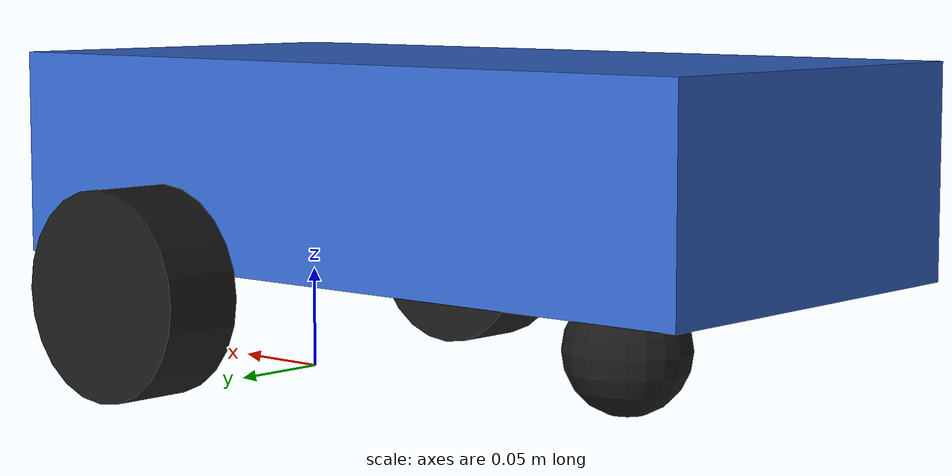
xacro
<?xml version="1.0"?>
<robot name="my_robot" xmlns:xacro="http://www.ros.org/wiki/xacro">

<material name="blue">
    <color rgba="0.2 0.4 0.8 1.0"/>
</material>

<material name="dark">
    <color rgba="0.1 0.1 0.1 1.0"/>
</material>

<xacro:property name="wheel_radius" value="0.05"/>
<xacro:property name="wheel_length" value="0.04"/>
<xacro:property name="wheel_mass" value="0.2"/>
<xacro:property name="base_mass" value="2.0"/>
<xacro:property name="base_length" value="0.4"/>
<xacro:property name="base_width" value="0.2"/>
<xacro:property name="base_height" value="0.1"/>
<xacro:property name="caster_mass" value="0.1"/>
<xacro:property name="caster_radius" value="0.03"/>

<xacro:macro name="wheel" params="prefix y_pos">
    <link name="${prefix}_wheel">
        <visual>
            <geometry>
                <cylinder radius="${wheel_radius}" length="${wheel_length}"/>
            </geometry>
            <origin xyz="0 0 0" rpy="0 0 0"/>
            <material name="dark"/>
        </visual>
        <collision>
            <geometry>
                <cylinder radius="${wheel_radius}" length="${wheel_length}"/>
            </geometry>
            <origin xyz="0 0 0" rpy="0 0 0"/>
        </collision>

        <inertial>
            <origin xyz="0 0 0" rpy="0 0 0"/>
            <mass value="${wheel_mass}"/>
            <inertia
                ixx="${(1/12) * wheel_mass * (3*wheel_radius*wheel_radius + wheel_length*wheel_length)}"
                ixy="0" ixz="0"
                iyy="${(1/12) * wheel_mass * (3*wheel_radius*wheel_radius + wheel_length*wheel_length)}"
                iyz="0"
                izz="${(wheel_mass * wheel_radius * wheel_radius) / 2}"/>
        </inertial>
    </link>

<joint name="base_${prefix}_wheel_joint" type="continuous">
    <parent link="base_link"/>
    <child link="${prefix}_wheel"/>
    <origin xyz="0.1 ${y_pos} 0" rpy="1.5708 0 0"/>
    <axis xyz="0 0 -1"/>
</joint>

</xacro:macro>

<!-- LINKS -->

    <link name="base_footprint">

    </link>

    <joint name="footprint_link_joint" type="fixed">
        <parent link="base_footprint"/>
        <child link="base_link"/>
        <origin xyz="-0.1 0 0.05" rpy="0 0 0"/>
    </joint>

    <link name="base_link">
        <visual>
            <geometry>
                <box size="0.4 0.2 0.1"/>
            </geometry>
            <origin xyz="0 0 0.06" rpy="0 0 0"/>
            <material name="blue"/>
        </visual>

        <collision>
            <geometry>
                <box size="0.4 0.2 0.1"/>
            </geometry>
            <origin xyz="0 0 0.06" rpy="0 0 0"/>
        </collision>
        <inertial>
            <origin xyz="0 0 0.06" rpy="0 0 0"/>
            <mass value="${base_mass}"/>
            <inertia
                ixx="${(1/12) * base_mass * (base_width*base_width + base_height*base_height)}"
                ixy="0" ixz="0"
                iyy="${(1/12) * base_mass * (base_length*base_length + base_height*base_height)}"
                iyz="0"
                izz="${(1/12) * base_mass * (base_length*base_length + base_width*base_width)}"/>
        </inertial>
    </link>

<xacro:wheel prefix="left" y_pos="0.12"/>
<xacro:wheel prefix="right" y_pos="-0.12"/>

    <link name="caster_wheel">
        <visual>
            <geometry>
                <sphere radius="0.03"/>
            </geometry>
                <material name="dark"/>
            <origin xyz="0 0 0" rpy="0 0 0"/>
        </visual>
        <collision>
            <geometry>
                <sphere radius="0.03"/>
            </geometry>
            <origin xyz="0 0 0" rpy="0 0 0"/>
        </collision>

                <inertial>
            <origin xyz="0 0 0" rpy="0 0 0"/>
            <mass value="${caster_mass}"/>
            <inertia
                ixx="${(2/5) * caster_mass * caster_radius * caster_radius}"
                ixy="0" ixz="0"
                iyy="${(2/5) * caster_mass * caster_radius * caster_radius}"
                iyz="0"
                izz="${(2/5) * caster_mass * caster_radius * caster_radius}"/>
        </inertial>
    </link>

    <!-- JOINTS -->

<joint name="base_caster_wheel_joint" type="fixed">
    <parent link="base_link"/>
    <child link="caster_wheel"/>
    <origin xyz="-0.1 0 -0.02" rpy="0 0 0"/>
</joint>

<gazebo>
    <plugin filename="gz-sim-diff-drive-system"
            name="gz::sim::systems::DiffDrive">

        <left_joint>base_left_wheel_joint</left_joint>
        <right_joint>base_right_wheel_joint</right_joint>
        <wheel_separation>0.24</wheel_separation>
        <wheel_radius>${wheel_radius}</wheel_radius>
        <topic>cmd_vel</topic>
        <odom_publish_frequency>30</odom_publish_frequency>
        <frame_id>odom</frame_id>
        <child_frame_id>base_footprint</child_frame_id>
    </plugin>
</gazebo>

</robot>
